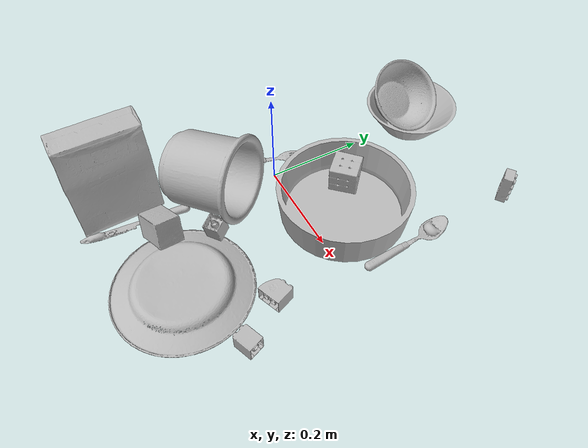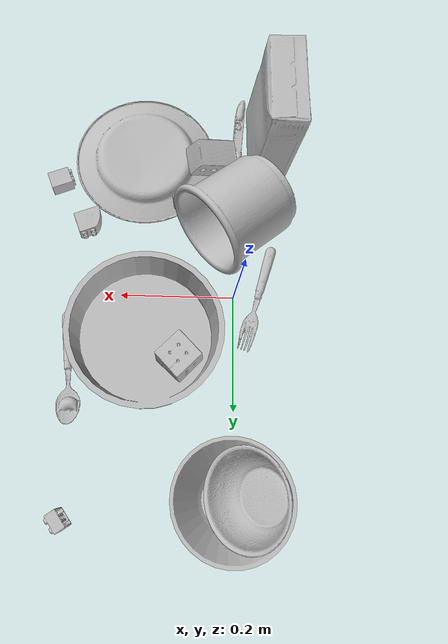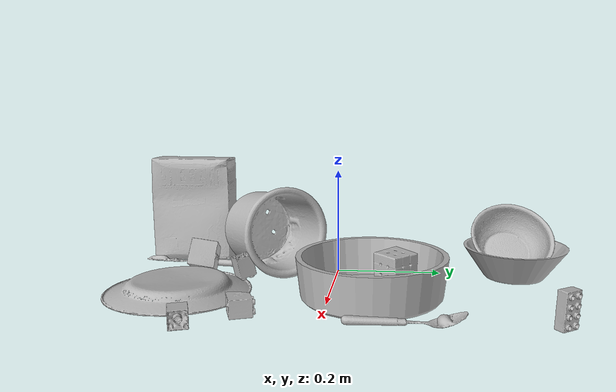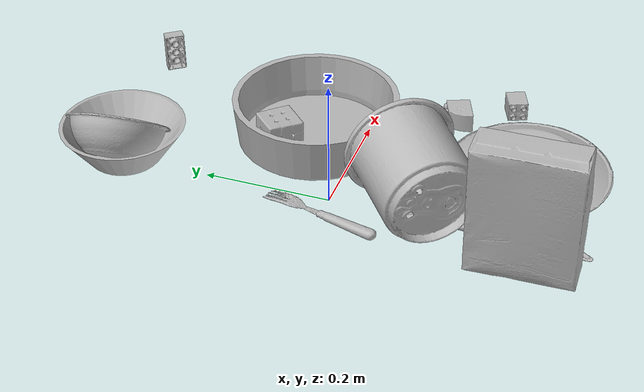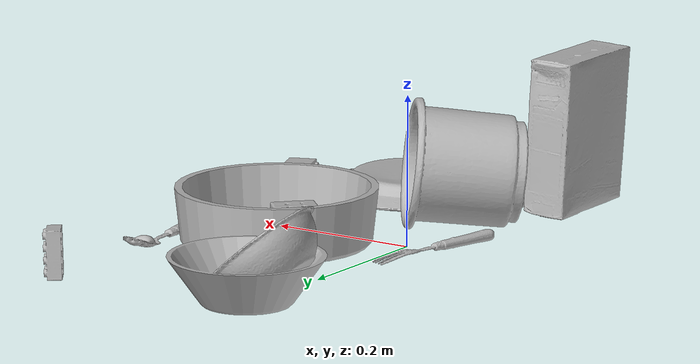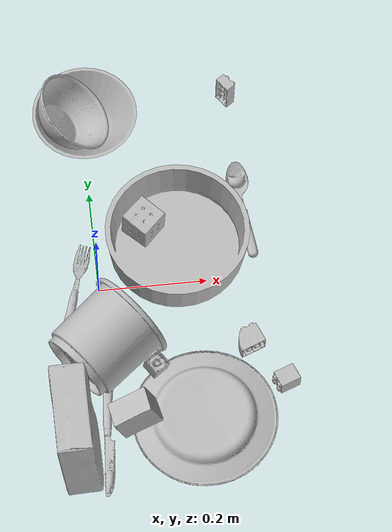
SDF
<sdf version="1.4">
  <world name="default">
    <light name="light1" type="point">
      <pose>0 0 1 0 0 0</pose>
      <diffuse>3 3 3 1</diffuse>
      <specular>3 3 3 1</specular>
    </light>
    <light name="light2" type="point">
      <pose>0 0.5 2 0 0 0</pose>
      <diffuse>1 1 1 1</diffuse>
      <specular>1 1 1 1</specular>
    </light>
    <light name="light3" type="point">
      <pose>0 0.5 2 0 0 0</pose>
      <diffuse>3 3 3 1</diffuse>
      <specular>3 3 3 1</specular>
    </light>
    <scene>
      <ambient>0.7 0.7 0.7</ambient>
    </scene>
    <model name="plate1">
      <link name="link_plate1">
        <collision name="default">
          <geometry>
            <mesh>
              <uri>model://plate/collision_meshes/collision.obj</uri>
              <scale>1.0 1.0 1.0</scale>
            </mesh>
          </geometry>
          <surface>
            <friction>
              <ode>
                <mu>0.5</mu>
                <mu2>0.5</mu2>
              </ode>
            </friction>
          <contact>
        <ode>
            <max_vel>0</max_vel>
            <min_depth>0.0001</min_depth>
            <kp>1e8</kp>
        </ode>
    </contact></surface>
        </collision>
        <visual name="default">
          <geometry>
            <mesh>
              <uri>model://plate/visual_meshes/visual.dae</uri>
              <scale>1.0 1.0 1.0</scale>
            </mesh>
          </geometry>
        </visual>
        <inertial>
          <mass>0.14927330613136292</mass>
          <pose>-0.0006044599576853216 0.00027825793949887156 -0.0010561984963715076 0.0022187657602494516 -0.0032254905015569333 0.45261542380491104</pose>
          <inertia>
            <ixx>0.0006983033</ixx>
            <iyy>0.0006916243</iyy>
            <izz>0.0013657772</izz>
            <ixy>0</ixy>
            <ixz>0</ixz>
            <iyz>0</iyz>
          </inertia>
        </inertial>
      </link>
      <pose>0.16605176031589508 -0.26935285329818726 0.013940923847258091 3.125678290612161 -0.0074495841393360405 1.1951750244586128</pose>
    </model>
    <model name="plate2">
      <link name="link_plate2">
        <collision name="default">
          <geometry>
            <mesh>
              <uri>model://pan_tefal/collision_meshes/collision.obj</uri>
              <scale>1.0 1.0 1.0</scale>
            </mesh>
          </geometry>
          <surface>
            <friction>
              <ode>
                <mu>0.5</mu>
                <mu2>0.5</mu2>
              </ode>
            </friction>
          <contact>
        <ode>
            <max_vel>0</max_vel>
            <min_depth>0.0001</min_depth>
            <kp>1e8</kp>
        </ode>
    </contact></surface>
        </collision>
        <visual name="default">
          <geometry>
            <mesh>
              <uri>model://pan_tefal/visual_meshes/visual.dae</uri>
              <scale>1.0 1.0 1.0</scale>
            </mesh>
          </geometry>
        </visual>
        <inertial>
          <mass>1.1722657680511475</mass>
          <pose>-0.00018002268916461617 3.2786720112198964e-05 -0.008514933288097382 0.0008190189984333748 -0.0003301390782503885 -0.3318520141268409</pose>
          <inertia>
            <ixx>0.008092094</ixx>
            <iyy>0.008144264</iyy>
            <izz>0.014895983</izz>
            <ixy>0</ixy>
            <ixz>0</ixz>
            <iyz>0</iyz>
          </inertia>
        </inertial>
      </link>
      <pose>0.15275342762470245 0.07509966194629669 0.03804999962449074 -2.763058584927849e-08 -9.182871530658566e-10 2.161506271058533</pose>
    </model>
    <model name="bowl1">
      <link name="link_bowl1">
        <collision name="default">
          <geometry>
            <mesh>
              <uri>model://bowl_a/collision_meshes/collision.obj</uri>
              <scale>1.0 1.0 1.0</scale>
            </mesh>
          </geometry>
          <surface>
            <friction>
              <ode>
                <mu>0.5</mu>
                <mu2>0.5</mu2>
              </ode>
            </friction>
          <contact>
        <ode>
            <max_vel>0</max_vel>
            <min_depth>0.0001</min_depth>
            <kp>1e8</kp>
        </ode>
    </contact></surface>
        </collision>
        <visual name="default">
          <geometry>
            <mesh>
              <uri>model://bowl_a/visual_meshes/visual.dae</uri>
              <scale>1.0 1.0 1.0</scale>
            </mesh>
          </geometry>
        </visual>
        <inertial>
          <mass>0.2988097667694092</mass>
          <pose>0.0002786743571050465 4.731365334009752e-05 -0.0013765293406322598 -0.0009805349169279892 -0.001093820822183951 -0.19123530183129564</pose>
          <inertia>
            <ixx>0.00085072505</ixx>
            <iyy>0.00085594796</iyy>
            <izz>0.0015130473</izz>
            <ixy>0</ixy>
            <ixz>0</ixz>
            <iyz>0</iyz>
          </inertia>
        </inertial>
      </link>
      <pose>0.00606280704960227 0.34189340472221375 0.030383002012968063 2.0162073415239423e-09 -6.147899843277446e-08 -2.2747857889487864</pose>
    </model>
    <model name="bowl2">
      <link name="link_bowl2">
        <collision name="default">
          <geometry>
            <mesh>
              <uri>model://bowl/collision_meshes/collision.obj</uri>
              <scale>1.0 1.0 1.0</scale>
            </mesh>
          </geometry>
          <surface>
            <friction>
              <ode>
                <mu>0.5</mu>
                <mu2>0.5</mu2>
              </ode>
            </friction>
          <contact>
        <ode>
            <max_vel>0</max_vel>
            <min_depth>0.0001</min_depth>
            <kp>1e8</kp>
        </ode>
    </contact></surface>
        </collision>
        <visual name="default">
          <geometry>
            <mesh>
              <uri>model://bowl/visual_meshes/visual.dae</uri>
              <scale>1.0 1.0 1.0</scale>
            </mesh>
          </geometry>
        </visual>
        <inertial>
          <mass>0.05087859928607941</mass>
          <pose>0.00020445352129172534 -0.001030206447467208 -0.0008042655535973608 -0.015764084400621287 0.014546790156403148 0.7140405806030785</pose>
          <inertia>
            <ixx>0.0001168722</ixx>
            <iyy>0.00011426082</iyy>
            <izz>0.0001966192</izz>
            <ixy>0</ixy>
            <ixz>0</ixz>
            <iyz>0</iyz>
          </inertia>
        </inertial>
      </link>
      <pose>-0.027584321796894073 0.33680084347724915 0.05518481880426407 0.48487796231233893 0.5668196020893147 0.8978138690433066</pose>
    </model>
    <model name="silverware1">
      <link name="link_silverware1">
        <collision name="default">
          <geometry>
            <mesh>
              <uri>model://spoon/collision_meshes/collision.obj</uri>
              <scale>1.0 1.0 1.0</scale>
            </mesh>
          </geometry>
          <surface>
            <friction>
              <ode>
                <mu>0.5</mu>
                <mu2>0.5</mu2>
              </ode>
            </friction>
          <contact>
        <ode>
            <max_vel>0</max_vel>
            <min_depth>0.0001</min_depth>
            <kp>1e8</kp>
        </ode>
    </contact></surface>
        </collision>
        <visual name="default">
          <geometry>
            <mesh>
              <uri>model://spoon/visual_meshes/visual.dae</uri>
              <scale>1.0 1.0 1.0</scale>
            </mesh>
          </geometry>
        </visual>
        <inertial>
          <mass>0.031133336946368217</mass>
          <pose>-0.005526311229914427 -0.001603417214937508 -0.000727165665011853 0.03521724372111935 -0.03906583963771688 0.006150613707428126</pose>
          <inertia>
            <ixx>1.7316867e-06</ixx>
            <iyy>0.00011846133</iyy>
            <izz>0.00011931534</izz>
            <ixy>0</ixy>
            <ixz>0</ixz>
            <iyz>0</iyz>
          </inertia>
        </inertial>
      </link>
      <pose>0.2815721929073334 0.13371938467025757 0.008385276421904564 0.006773939543024364 0.026892948736036718 1.6477017994883505</pose>
    </model>
    <model name="box1">
      <link name="link_box1">
        <collision name="default">
          <geometry>
            <mesh>
              <uri>model://cracker_box/collision_meshes/collision.obj</uri>
              <scale>1.0 1.0 1.0</scale>
            </mesh>
          </geometry>
          <surface>
            <friction>
              <ode>
                <mu>0.5</mu>
                <mu2>0.5</mu2>
              </ode>
            </friction>
          <contact>
        <ode>
            <max_vel>0</max_vel>
            <min_depth>0.0001</min_depth>
            <kp>1e8</kp>
        </ode>
    </contact></surface>
        </collision>
        <visual name="default">
          <geometry>
            <mesh>
              <uri>model://cracker_box/visual_meshes/visual.dae</uri>
              <scale>1.0 1.0 1.0</scale>
            </mesh>
          </geometry>
        </visual>
        <inertial>
          <mass>2.900710344314575</mass>
          <pose>0.0009464158210903406 0.00025434247800149024 -0.0017029534792527556 -0.0003162075379034469 -0.011106488669169442 0.0025467947685016775</pose>
          <inertia>
            <ixx>0.007378111</ixx>
            <iyy>0.012182713</iyy>
            <izz>0.01738585</izz>
            <ixy>0</ixy>
            <ixz>0</ixz>
            <iyz>0</iyz>
          </inertia>
        </inertial>
      </link>
      <pose>-0.06426069140434265 -0.30982714891433716 0.10730645805597305 -0.042438560070282016 1.529490808206663 -0.018991626986180527</pose>
    </model>
    <model name="box2">
      <link name="link_box2">
        <collision name="default">
          <geometry>
            <mesh>
              <uri>model://rubiks_cube/collision_meshes/collision.obj</uri>
              <scale>1.0 1.0 1.0</scale>
            </mesh>
          </geometry>
          <surface>
            <friction>
              <ode>
                <mu>0.5</mu>
                <mu2>0.5</mu2>
              </ode>
            </friction>
          <contact>
        <ode>
            <max_vel>0</max_vel>
            <min_depth>0.0001</min_depth>
            <kp>1e8</kp>
        </ode>
    </contact></surface>
        </collision>
        <visual name="default">
          <geometry>
            <mesh>
              <uri>model://rubiks_cube/visual_meshes/visual.dae</uri>
              <scale>1.0 1.0 1.0</scale>
            </mesh>
          </geometry>
        </visual>
        <inertial>
          <mass>0.28670012950897217</mass>
          <pose>2.6721039830590598e-05 5.2569666877388954e-05 -7.264316082000732e-06 -0.05467310906580907 -0.09814045067101686 -0.03445712671449578</pose>
          <inertia>
            <ixx>0.00015842107</ixx>
            <iyy>0.0001576823</iyy>
            <izz>0.00015973386</izz>
            <ixy>0</ixy>
            <ixz>0</ixz>
            <iyz>0</iyz>
          </inertia>
        </inertial>
      </link>
      <pose>0.09416081756353378 0.11480997502803802 0.03699341416358948 -2.824600549125978 1.531543370273938 2.686346991486097</pose>
    </model>
    <model name="cup1">
      <link name="link_cup1">
        <collision name="default">
          <geometry>
            <mesh>
              <uri>model://g_cups/collision_meshes/collision.obj</uri>
              <scale>2.0 2.0 2.0</scale>
            </mesh>
          </geometry>
          <surface>
            <friction>
              <ode>
                <mu>0.5</mu>
                <mu2>0.5</mu2>
              </ode>
            </friction>
          <contact>
        <ode>
            <max_vel>0</max_vel>
            <min_depth>0.0001</min_depth>
            <kp>1e8</kp>
        </ode>
    </contact></surface>
        </collision>
        <visual name="default">
          <geometry>
            <mesh>
              <uri>model://g_cups/visual_meshes/visual.dae</uri>
              <scale>2.0 2.0 2.0</scale>
            </mesh>
          </geometry>
        </visual>
        <inertial>
          <mass>0.7979594469070435</mass>
          <pose>-0.001589252962730825 -8.413367322646081e-05 -0.004265873227268457 -0.2138242542550812 -0.3141046905663657 0.3112069095441374</pose>
          <inertia>
            <ixx>0.0037255902</ixx>
            <iyy>0.003712916</iyy>
            <izz>0.0038590694</izz>
            <ixy>0</ixy>
            <ixz>0</ixz>
            <iyz>0</iyz>
          </inertia>
        </inertial>
      </link>
      <pose>-0.0007010505069047213 -0.13500067591667175 0.07969546318054199 -0.9275176925486047 -1.3958616001694546 -1.5314688177956293</pose>
    </model>
    <model name="silverware2">
      <link name="link_silverware2">
        <collision name="default">
          <geometry>
            <mesh>
              <uri>model://fork/collision_meshes/collision.obj</uri>
              <scale>1.0 1.0 1.0</scale>
            </mesh>
          </geometry>
          <surface>
            <friction>
              <ode>
                <mu>0.5</mu>
                <mu2>0.5</mu2>
              </ode>
            </friction>
          <contact>
        <ode>
            <max_vel>0</max_vel>
            <min_depth>0.0001</min_depth>
            <kp>1e8</kp>
        </ode>
    </contact></surface>
        </collision>
        <visual name="default">
          <geometry>
            <mesh>
              <uri>model://fork/visual_meshes/visual.dae</uri>
              <scale>1.0 1.0 1.0</scale>
            </mesh>
          </geometry>
        </visual>
        <inertial>
          <mass>0.026295984163880348</mass>
          <pose>-0.02957003563642502 0.0004658822435885668 0.0003218861238565296 -0.013551585765180826 -0.010977835012843383 0.014453895551669751</pose>
          <inertia>
            <ixx>9.2182285e-07</ixx>
            <iyy>6.865125e-05</iyy>
            <izz>6.9063564e-05</izz>
            <ixy>0</ixy>
            <ixz>0</ixz>
            <iyz>0</iyz>
          </inertia>
        </inertial>
      </link>
      <pose>-0.04362083971500397 -0.0002496633678674698 0.007446594536304474 -3.0635065374688373 0.0028362122597882303 1.297970571421343</pose>
    </model>
    <model name="silverware3">
      <link name="link_silverware3">
        <collision name="default">
          <geometry>
            <mesh>
              <uri>model://knife/collision_meshes/collision.obj</uri>
              <scale>1.0 1.0 1.0</scale>
            </mesh>
          </geometry>
          <surface>
            <friction>
              <ode>
                <mu>0.5</mu>
                <mu2>0.5</mu2>
              </ode>
            </friction>
          <contact>
        <ode>
            <max_vel>0</max_vel>
            <min_depth>0.0001</min_depth>
            <kp>1e8</kp>
        </ode>
    </contact></surface>
        </collision>
        <visual name="default">
          <geometry>
            <mesh>
              <uri>model://knife/visual_meshes/visual.dae</uri>
              <scale>1.0 1.0 1.0</scale>
            </mesh>
          </geometry>
        </visual>
        <inertial>
          <mass>0.018686598166823387</mass>
          <pose>-0.023785265162587166 0.001527512213215232 5.06201722600963e-05 0.0730586728597059 0.01724841756758314 -0.007409823953988089</pose>
          <inertia>
            <ixx>5.3040145e-07</ixx>
            <iyy>7.1790884e-05</iyy>
            <izz>7.1961695e-05</izz>
            <ixy>0</ixy>
            <ixz>0</ixz>
            <iyz>0</iyz>
          </inertia>
        </inertial>
      </link>
      <pose>-0.008259307593107224 -0.29563093185424805 0.008252885192632675 -3.0191967181650146 0.00082585313837536 -1.6499526604310546</pose>
    </model>
    <model name="toy1">
      <link name="link_toy1">
        <collision name="default">
          <geometry>
            <mesh>
              <uri>model://d_lego_duplo/collision_meshes/collision.obj</uri>
              <scale>1.0 1.0 1.0</scale>
            </mesh>
          </geometry>
          <surface>
            <friction>
              <ode>
                <mu>0.5</mu>
                <mu2>0.5</mu2>
              </ode>
            </friction>
          <contact>
        <ode>
            <max_vel>0</max_vel>
            <min_depth>0.0001</min_depth>
            <kp>1e8</kp>
        </ode>
    </contact></surface>
        </collision>
        <visual name="default">
          <geometry>
            <mesh>
              <uri>model://d_lego_duplo/visual_meshes/visual.dae</uri>
              <scale>1.0 1.0 1.0</scale>
            </mesh>
          </geometry>
        </visual>
        <inertial>
          <mass>0.057973701506853104</mass>
          <pose>0.002830564510077238 0.0001636612432776019 0.000858980929479003 0.08010949801199577 -0.38355255965562274 0.0010296774355632512</pose>
          <inertia>
            <ixx>1.1222855e-05</ixx>
            <iyy>1.5928275e-05</iyy>
            <izz>1.5360585e-05</izz>
            <ixy>0</ixy>
            <ixz>0</ixz>
            <iyz>0</iyz>
          </inertia>
        </inertial>
      </link>
      <pose>0.2604728937149048 -0.13113974034786224 0.01638089120388031 -1.5706278840240022 -0.007909749231561241 0.3697019693083773</pose>
    </model>
    <model name="toy2">
      <link name="link_toy2">
        <collision name="default">
          <geometry>
            <mesh>
              <uri>model://c_lego_duplo/collision_meshes/collision.obj</uri>
              <scale>1.0 1.0 1.0</scale>
            </mesh>
          </geometry>
          <surface>
            <friction>
              <ode>
                <mu>0.5</mu>
                <mu2>0.5</mu2>
              </ode>
            </friction>
          <contact>
        <ode>
            <max_vel>0</max_vel>
            <min_depth>0.0001</min_depth>
            <kp>1e8</kp>
        </ode>
    </contact></surface>
        </collision>
        <visual name="default">
          <geometry>
            <mesh>
              <uri>model://c_lego_duplo/visual_meshes/visual.dae</uri>
              <scale>1.0 1.0 1.0</scale>
            </mesh>
          </geometry>
        </visual>
        <inertial>
          <mass>0.03295557200908661</mass>
          <pose>0.00031645927811041474 0.0001946454867720604 0.0010453149443492293 -0.011520797378012098 0.005900082234647494 0.03110035414112205</pose>
          <inertia>
            <ixx>1.2681916e-05</ixx>
            <iyy>4.0510618e-06</iyy>
            <izz>1.4820123e-05</izz>
            <ixy>0</ixy>
            <ixz>0</ixz>
            <iyz>0</iyz>
          </inertia>
        </inertial>
      </link>
      <pose>0.277890145778656 0.37919002771377563 0.03213147819042206 1.5892900706887048 0.03520102493516991 2.195503667497956</pose>
    </model>
    <model name="toy3">
      <link name="link_toy3">
        <collision name="default">
          <geometry>
            <mesh>
              <uri>model://foam_brick/collision_meshes/collision.obj</uri>
              <scale>1.0 1.0 1.0</scale>
            </mesh>
          </geometry>
          <surface>
            <friction>
              <ode>
                <mu>0.5</mu>
                <mu2>0.5</mu2>
              </ode>
            </friction>
          <contact>
        <ode>
            <max_vel>0</max_vel>
            <min_depth>0.0001</min_depth>
            <kp>1e8</kp>
        </ode>
    </contact></surface>
        </collision>
        <visual name="default">
          <geometry>
            <mesh>
              <uri>model://foam_brick/visual_meshes/visual.dae</uri>
              <scale>1.0 1.0 1.0</scale>
            </mesh>
          </geometry>
        </visual>
        <inertial>
          <mass>0.2026180773973465</mass>
          <pose>-0.00025224717683158815 0.0003458433202467859 -0.0002532101352699101 -0.2940154265809752 0.017274439844268085 -0.0007449877964386924</pose>
          <inertia>
            <ixx>8.850737e-05</ixx>
            <iyy>0.00014130655</iyy>
            <izz>0.00014310238</izz>
            <ixy>0</ixy>
            <ixz>0</ixz>
            <iyz>0</iyz>
          </inertia>
        </inertial>
      </link>
      <pose>0.04197198152542114 -0.2593570053577423 0.03604358062148094 -1.7609796242615394 -0.39550660522731623 0.22642570544127522</pose>
    </model>
    <model name="toy4">
      <link name="link_toy4">
        <collision name="default">
          <geometry>
            <mesh>
              <uri>model://f_lego_duplo/collision_meshes/collision.obj</uri>
              <scale>1.0 1.0 1.0</scale>
            </mesh>
          </geometry>
          <surface>
            <friction>
              <ode>
                <mu>0.5</mu>
                <mu2>0.5</mu2>
              </ode>
            </friction>
          <contact>
        <ode>
            <max_vel>0</max_vel>
            <min_depth>0.0001</min_depth>
            <kp>1e8</kp>
        </ode>
    </contact></surface>
        </collision>
        <visual name="default">
          <geometry>
            <mesh>
              <uri>model://f_lego_duplo/visual_meshes/visual.dae</uri>
              <scale>1.0 1.0 1.0</scale>
            </mesh>
          </geometry>
        </visual>
        <inertial>
          <mass>0.026114314794540405</mass>
          <pose>2.3694528863416053e-05 0.00013393153494689614 0.001883787801489234 0.02983849389432246 -0.014425286210530337 -0.675657453158783</pose>
          <inertia>
            <ixx>5.5180976e-06</ixx>
            <iyy>5.5672576e-06</iyy>
            <izz>4.7899434e-06</izz>
            <ixy>0</ixy>
            <ixz>0</ixz>
            <iyz>0</iyz>
          </inertia>
        </inertial>
      </link>
      <pose>0.08873762935400009 -0.16880041360855103 0.028875544667243958 3.1203689502064527 -0.19647133277738135 2.209725783746748</pose>
    </model>
    <model name="toy5">
      <link name="link_toy5">
        <collision name="default">
          <geometry>
            <mesh>
              <uri>model://b_lego_duplo/collision_meshes/collision.obj</uri>
              <scale>1.0 1.0 1.0</scale>
            </mesh>
          </geometry>
          <surface>
            <friction>
              <ode>
                <mu>0.5</mu>
                <mu2>0.5</mu2>
              </ode>
            </friction>
          <contact>
        <ode>
            <max_vel>0</max_vel>
            <min_depth>0.0001</min_depth>
            <kp>1e8</kp>
        </ode>
    </contact></surface>
        </collision>
        <visual name="default">
          <geometry>
            <mesh>
              <uri>model://b_lego_duplo/visual_meshes/visual.dae</uri>
              <scale>1.0 1.0 1.0</scale>
            </mesh>
          </geometry>
        </visual>
        <inertial>
          <mass>0.0471348837018013</mass>
          <pose>-0.00011053068010369316 -9.152583515970036e-06 0.0019294292433187366 -0.037494549971735465 -0.026354388193955382 0.45188781154390406</pose>
          <inertia>
            <ixx>9.646508e-06</ixx>
            <iyy>9.711356e-06</iyy>
            <izz>8.594722e-06</izz>
            <ixy>0</ixy>
            <ixz>0</ixz>
            <iyz>0</iyz>
          </inertia>
        </inertial>
      </link>
      <pose>0.3182532489299774 -0.2151632308959961 0.01612132415175438 1.572375929677933 -0.012012130585717139 -1.1937060502702102</pose>
    </model>
  <physics type="ode">
      <max_contacts>50</max_contacts>
      <ode>
        <solver>
          <type>quick</type>
          <iters>75</iters>
        </solver>
        <constraints>
          <contact_max_correcting_vel>0</contact_max_correcting_vel>
          <contact_surface_layer>0</contact_surface_layer>
        </constraints>
      </ode>
    </physics></world>
</sdf>
